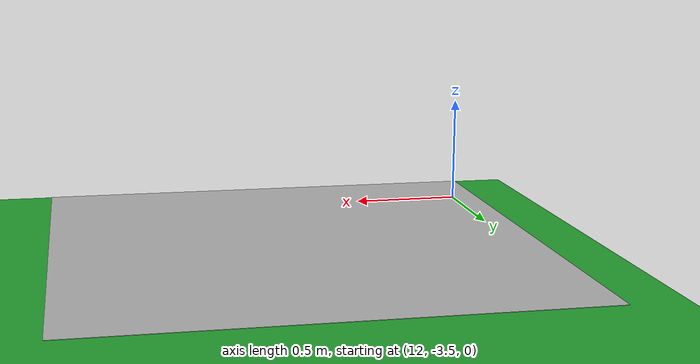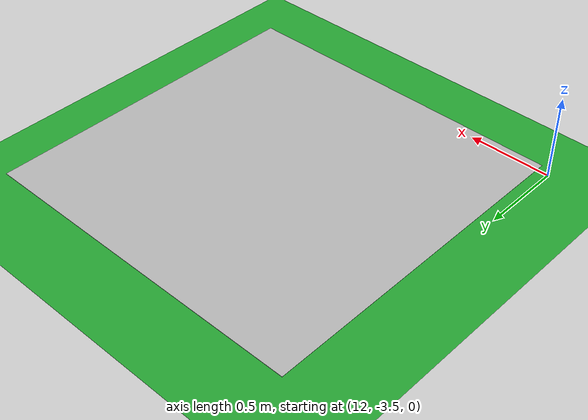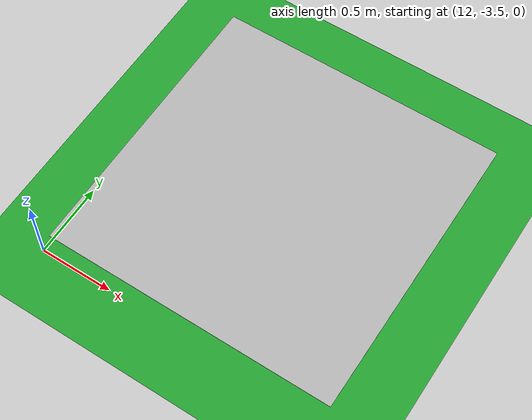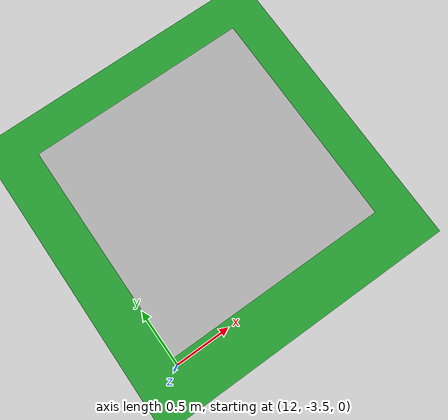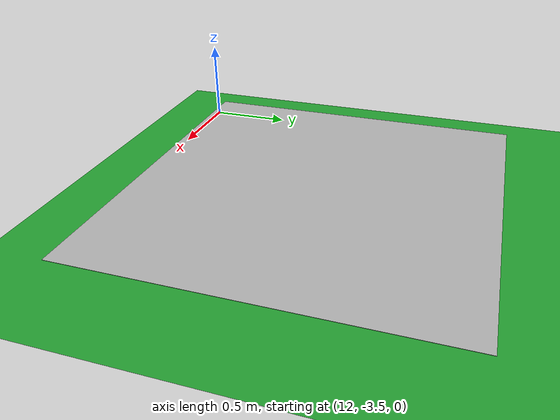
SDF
<sdf version='1.6'>
  <world name='default'>
    <scene>
        <ambient>0.0 0.0 0.0 1.0</ambient>
        <shadows>0</shadows>
    </scene>
    <model name='ground_plane'>
      <static>1</static>
      <link name='link'>
        <collision name='collision'>
          <geometry>
            <plane>
              <normal>0 0 1</normal>
              <size>100 100</size>
            </plane>
          </geometry>
          <surface>
            <friction>
              <ode>
                <mu>100</mu>
                <mu2>50</mu2>
              </ode>
              <torsional>
                <ode/>
              </torsional>
            </friction>
            <contact>
              <ode/>
            </contact>
            <bounce/>
          </surface>
          <max_contacts>10</max_contacts>
        </collision>
        <visual name='visual'>
          <cast_shadows>0</cast_shadows>
          <geometry>
            <plane>
              <normal>0 0 1</normal>
              <size>100 100</size>
            </plane>
          </geometry>
          <material>
            <script>
              <uri>file://media/materials/scripts/gazebo.material</uri>
              <name>Gazebo/Green</name>
            </script>
          </material>
        </visual>
        <self_collide>0</self_collide>
        <kinematic>0</kinematic>
        <gravity>1</gravity>
      </link>
    </model>
    <physics name='default_physics' default='0' type='ode'>
      <ode>
        <solver>
          <type>quick</type>
          <iters>10</iters>
          <sor>1.3</sor>
          <use_dynamic_moi_rescaling>0</use_dynamic_moi_rescaling>
        </solver>
        <constraints>
          <cfm>0</cfm>
          <erp>0.2</erp>
          <contact_max_correcting_vel>100</contact_max_correcting_vel>
          <contact_surface_layer>0.001</contact_surface_layer>
        </constraints>
      </ode>
      <max_step_size>0.002</max_step_size>
      <real_time_factor>1</real_time_factor>
      <real_time_update_rate>500</real_time_update_rate>
    </physics>
    <gravity>0 0 -9.8066</gravity>
    <magnetic_field>6e-06 2.3e-05 -4.2e-05</magnetic_field>
    <atmosphere type='adiabatic'/>
    <scene>
      <ambient>0.4 0.4 0.4 1</ambient>
      <background>0.7 0.7 0.7 1</background>
      <shadows>1</shadows>
    </scene>
    <spherical_coordinates>
      <surface_model>EARTH_WGS84</surface_model>
      <latitude_deg>0</latitude_deg>
      <longitude_deg>0</longitude_deg>
      <elevation>0</elevation>
      <heading_deg>0</heading_deg>
    </spherical_coordinates>
    <model name='qrcode'>
      <static>1</static>
      <pose frame=''>13.0134 -2.43815 0.1 0 0 -1.57119</pose>
      <link name='link'>
        <collision name='collision'>
          <geometry>
            <plane>
              <normal>0 0 1</normal>
              <size>2 2</size>
            </plane>
          </geometry>
          <surface>
            <friction>
              <ode>
                <mu>100</mu>
                <mu2>50</mu2>
              </ode>
              <torsional>
                <ode/>
              </torsional>
            </friction>
            <contact>
              <ode/>
            </contact>
            <bounce/>
          </surface>
          <max_contacts>10</max_contacts>
        </collision>
        <visual name='visual'>
          <cast_shadows>0</cast_shadows>
          <geometry>
            <plane>
              <normal>0 0 1</normal>
              <size>2 2</size>
            </plane>
          </geometry>
          <material>
            <script>
              <uri>model://qrcode/materials/scripts</uri>
              <uri>model://qrcode/materials/textures/</uri>
              <name>qrcode/Image</name>
            </script>
          </material>
        </visual>
        <self_collide>0</self_collide>
        <kinematic>0</kinematic>
        <gravity>1</gravity>
      </link>
    </model>
  </world>
</sdf>
